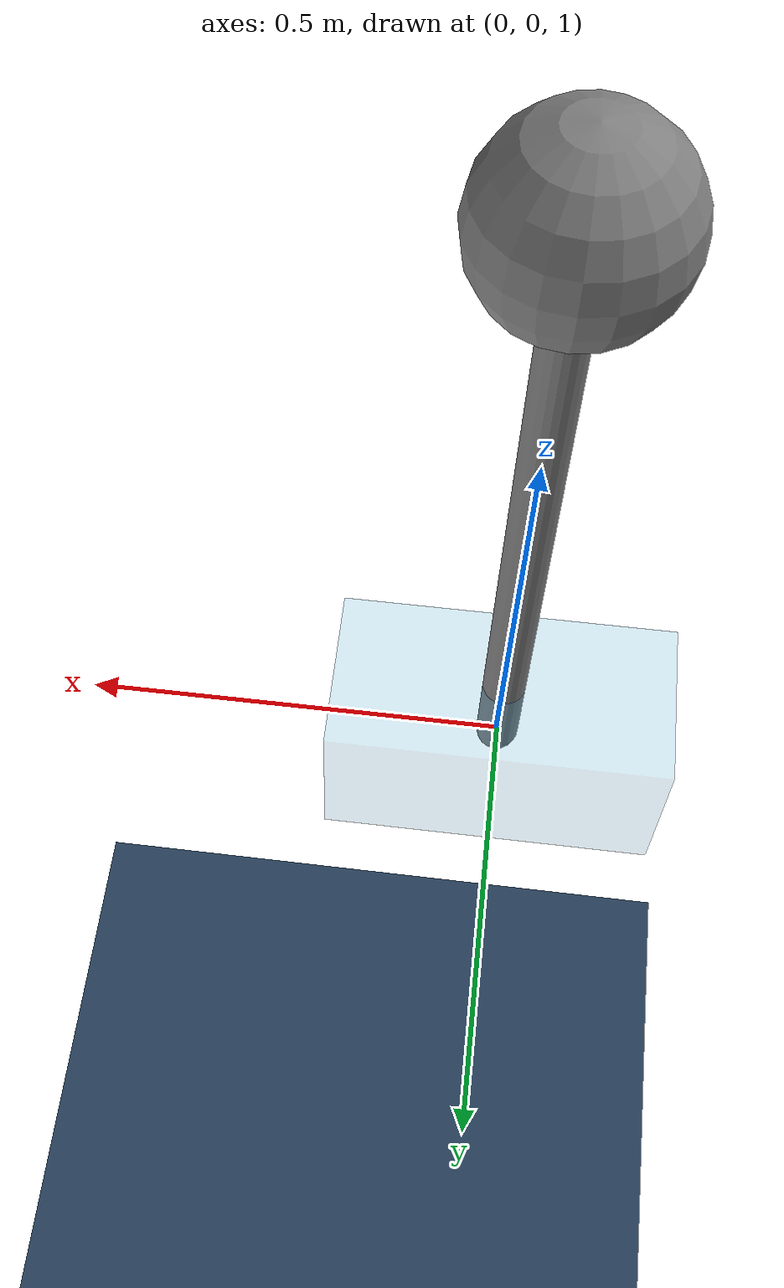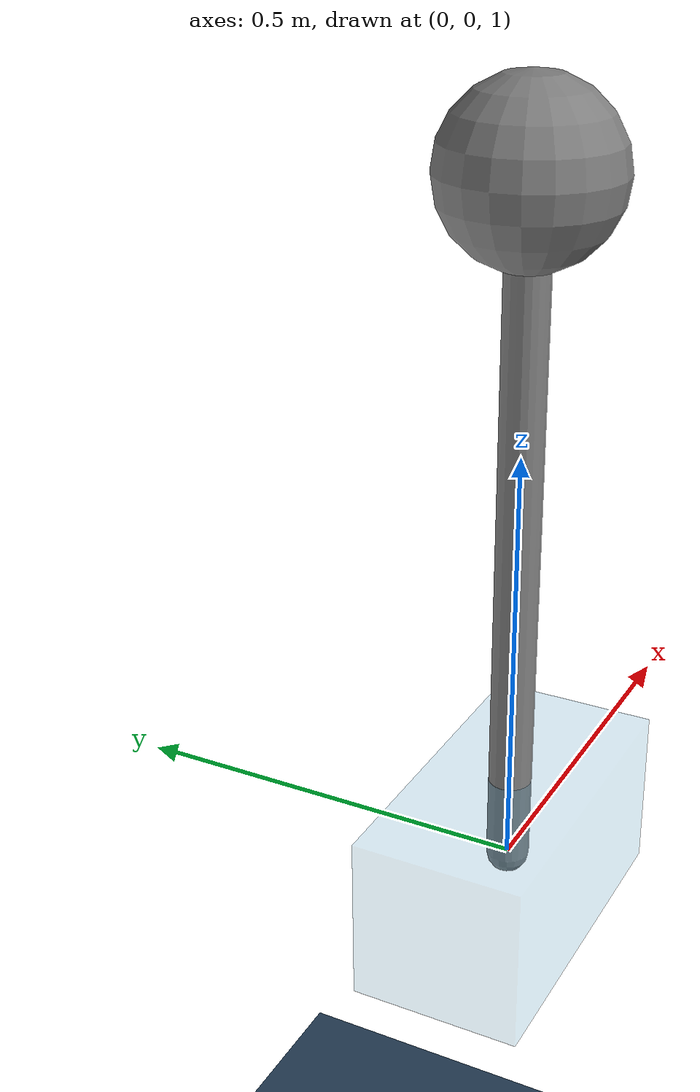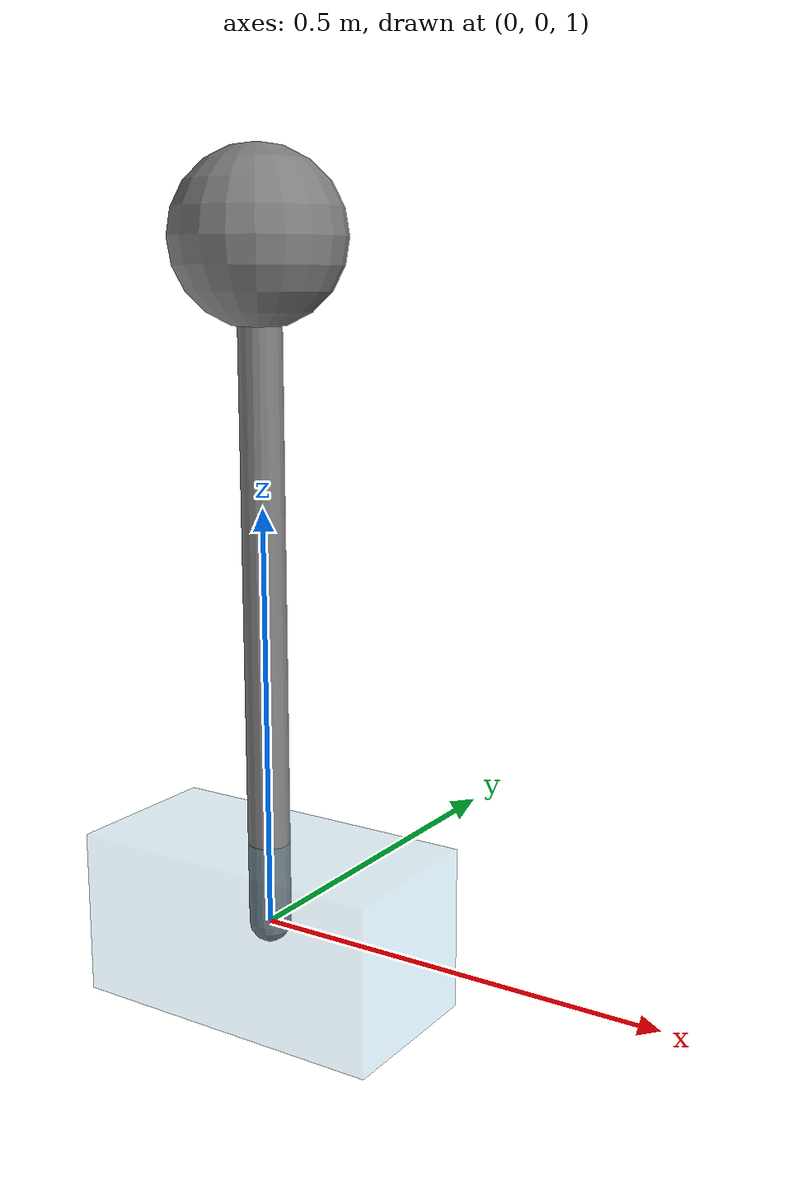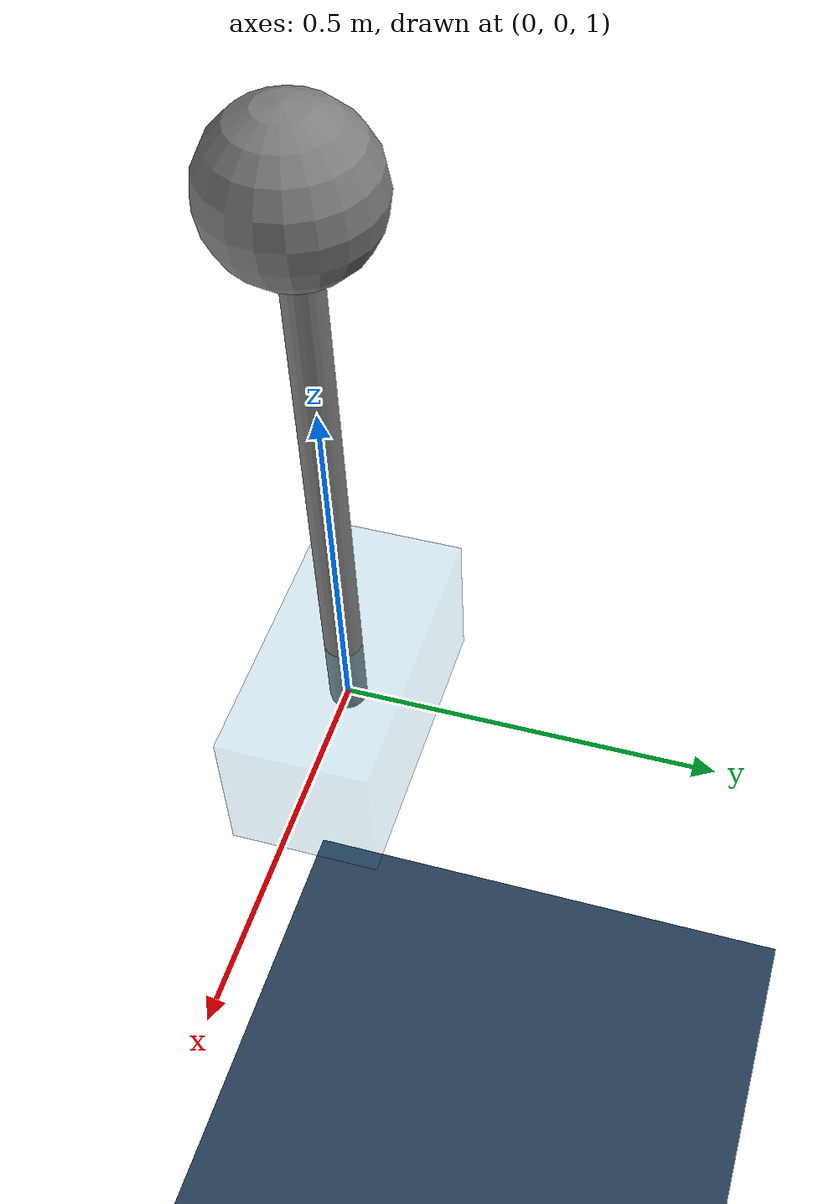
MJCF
<mujoco model="inverted_pendulum">

    <!-- Background texture -->
    <asset>
        <texture name="grid" type="2d" builtin="checker" rgb1=".1 .2 .3"
        rgb2=".2 .3 .4" width="100" height="100"/>
        <material name="grid" texture="grid" texrepeat="8 8" reflectance=".2"/>
    </asset>

    <worldbody>
        <!-- Place background -->
        <geom size="2 2 .01" type="plane" material="grid"/>
        <!-- Static light -->
        <light pos="0 0 3" dir="0 0 -1" diffuse=".8 .8 .8" specular=".3 .3 .3"/>

        <!-- Cart -->
        <body name="cart" pos="0 0 1">
            <!-- Sliding joint only in the x direction -->
            <joint name="cart_slide" type="slide" axis="1 0 0"/>
            <!-- Size is half size -->
            <geom name="cart_geom" type="box" size="0.2 0.1 0.1" rgba="0.2 0.6 0.8 0.2"/>
            <inertial mass="1" diaginertia="1e-5 1e-5 1e-5" pos="0 0 0"/>

            <!-- Weightless pendulum -->
            <body name="pendulum_stick" pos="0 0 0">
                <joint name="hinge" type="hinge" axis="0 1 0" pos="0 0 0"/>
                <geom name="pendulum_stick_geom" type="capsule" fromto="0 0 0 0 0 0.8" size="0.025"/>
                <inertial mass="0.0001" diaginertia="1e-5 1e-5 1e-5"  pos="0 0 0"/>

                <!-- Mass on the end of the pendulum -->
                <body name="pendulum" pos="0 0 0.8">
                    <geom name="pendulum_geom" type="sphere" size="0.1"/>
                    <inertial mass="0.1" diaginertia="1e-5 1e-5 1e-5" pos="0 0 0"/>
                </body>
            </body>
        </body>

    </worldbody>

    <!-- Force actuator on the cart -->
    <actuator>
        <general joint="cart_slide"/>
    </actuator>

</mujoco>
